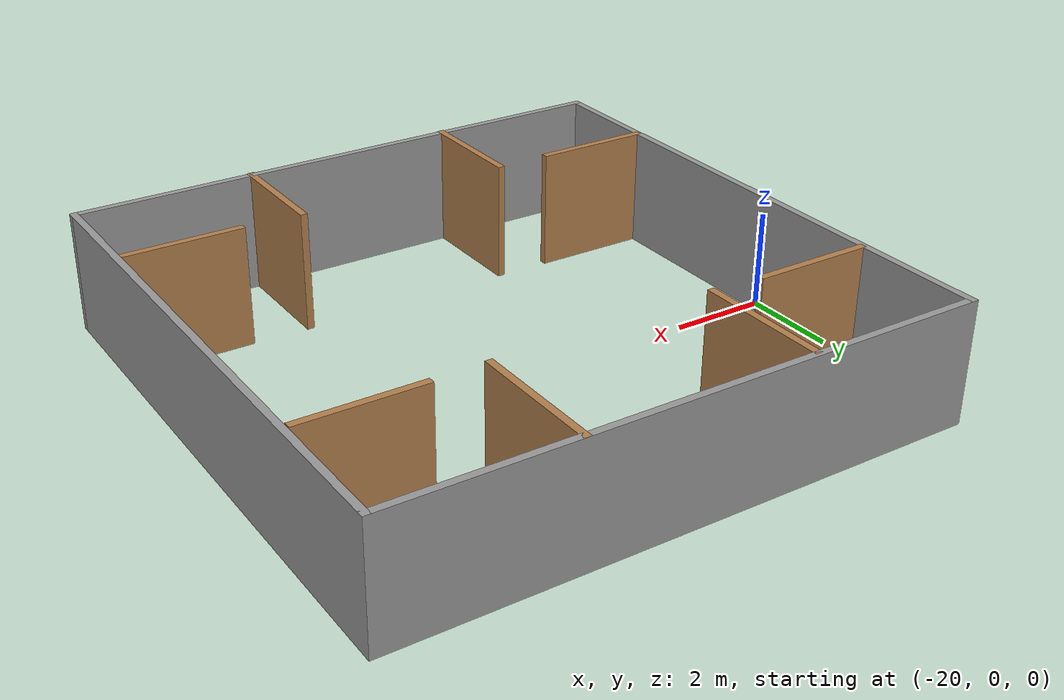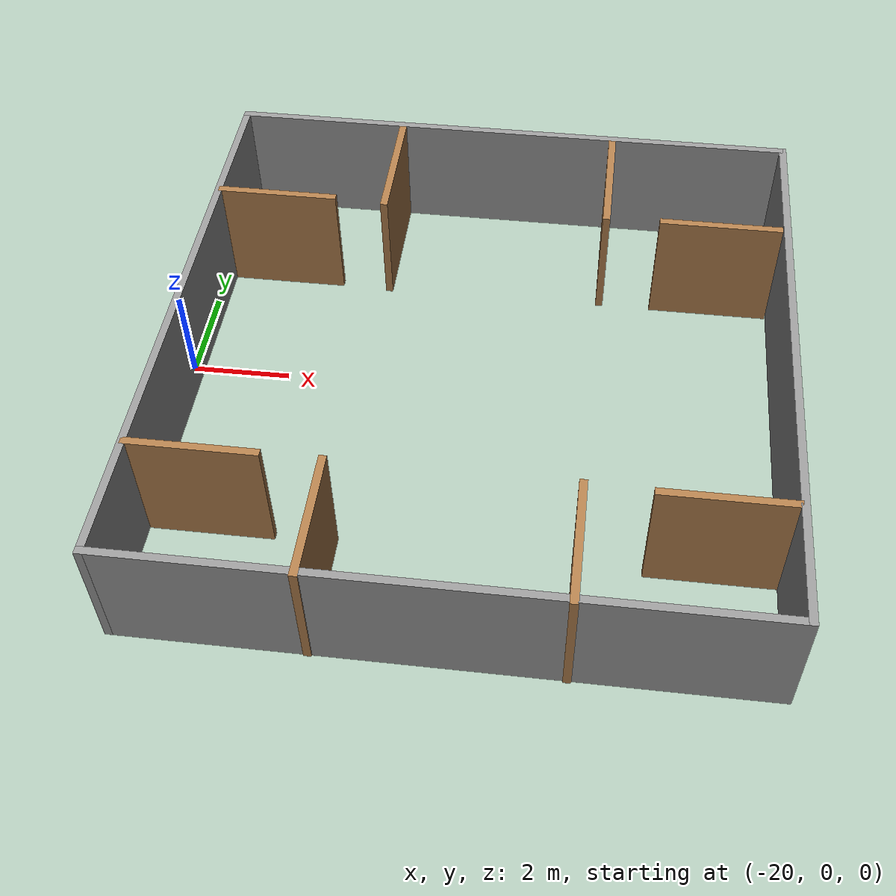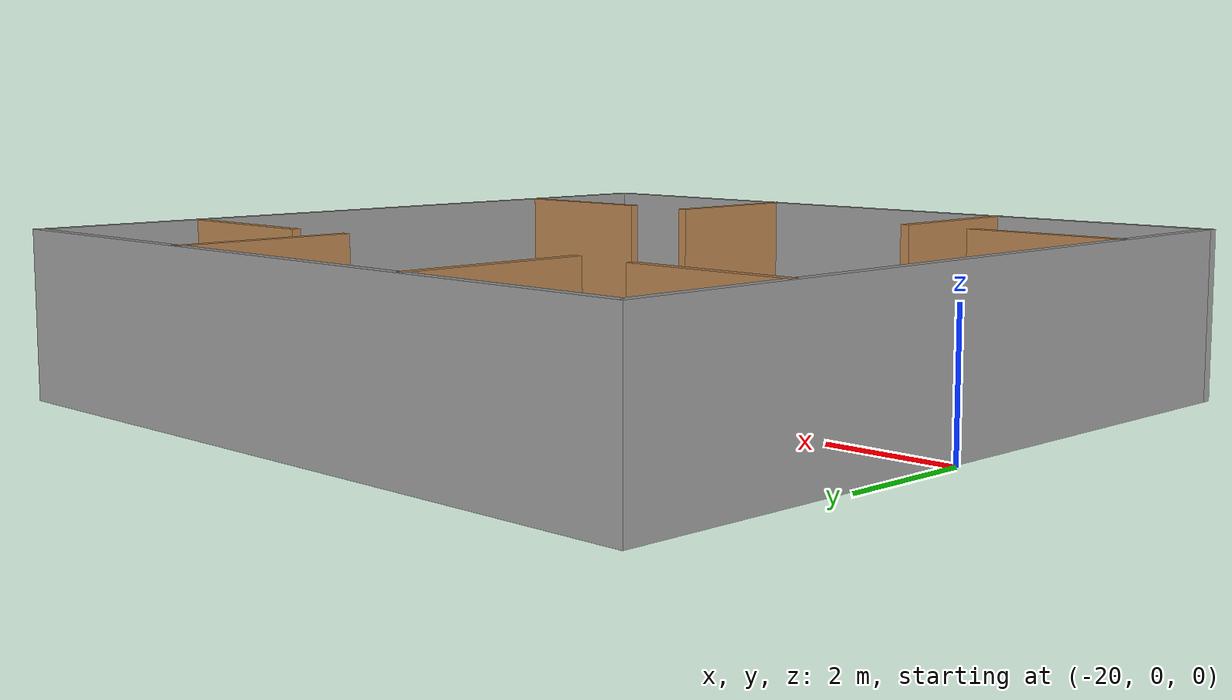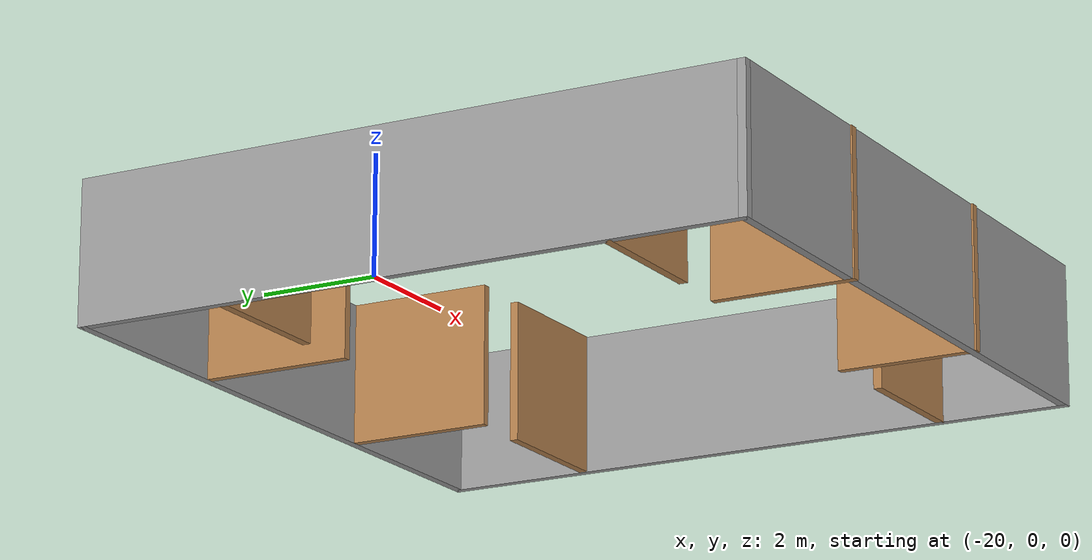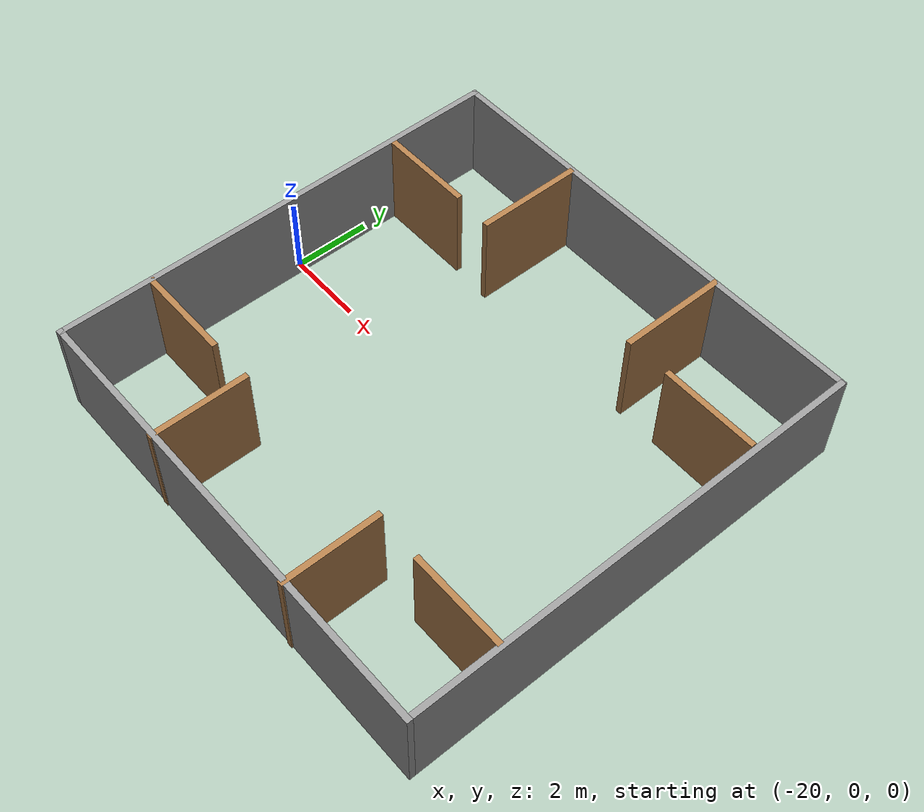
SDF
<?xml version='1.0'?>
<sdf version='1.6'>
  <model name='mybuilding'>
    <pose frame=''>-13.9308 -0.426632 0 0 -0 0</pose>
    <link name='Wall_0'>
      <collision name='Wall_0_Collision'>
        <geometry>
          <box>
            <size>12 0.15 2.5</size>
          </box>
        </geometry>
        <pose frame=''>0 0 1.25 0 -0 0</pose>
      </collision>
      <visual name='Wall_0_Visual'>
        <pose frame=''>0 0 1.25 0 -0 0</pose>
        <geometry>
          <box>
            <size>12 0.15 2.5</size>
          </box>
        </geometry>
        <material>
          <script>
            <uri>file://media/materials/scripts/gazebo.material</uri>
            <name>Gazebo/Grey</name>
          </script>
          <ambient>0.262745 0.262745 0.262745 1</ambient>
        </material>
        <meta>
          <layer>0</layer>
        </meta>
      </visual>
      <pose frame=''>1e-06 5.94223 0 0 -0 0</pose>
    </link>
    <link name='Wall_11'>
      <collision name='Wall_11_Collision'>
        <geometry>
          <box>
            <size>2.5 0.15 2.5</size>
          </box>
        </geometry>
        <pose frame=''>0 0 1.25 0 -0 0</pose>
      </collision>
      <visual name='Wall_11_Visual'>
        <pose frame=''>0 0 1.25 0 -0 0</pose>
        <geometry>
          <box>
            <size>2.5 0.15 2.5</size>
          </box>
        </geometry>
        <material>
          <script>
            <uri>file://media/materials/scripts/gazebo.material</uri>
            <name>Gazebo/Wood</name>
          </script>
          <ambient>1 1 1 1</ambient>
        </material>
        <meta>
          <layer>0</layer>
        </meta>
      </visual>
      <pose frame=''>-4.67255 3.32291 0 0 -0 0</pose>
    </link>
    <link name='Wall_13'>
      <collision name='Wall_13_Collision'>
        <geometry>
          <box>
            <size>2.75 0.15 2.5</size>
          </box>
        </geometry>
        <pose frame=''>0 0 1.25 0 -0 0</pose>
      </collision>
      <visual name='Wall_13_Visual'>
        <pose frame=''>0 0 1.25 0 -0 0</pose>
        <geometry>
          <box>
            <size>2.75 0.15 2.5</size>
          </box>
        </geometry>
        <material>
          <script>
            <uri>file://media/materials/scripts/gazebo.material</uri>
            <name>Gazebo/Wood</name>
          </script>
          <ambient>1 1 1 1</ambient>
        </material>
        <meta>
          <layer>0</layer>
        </meta>
      </visual>
      <pose frame=''>-2.38952 4.56971 0 0 -0 1.5708</pose>
    </link>
    <link name='Wall_15'>
      <collision name='Wall_15_Collision'>
        <geometry>
          <box>
            <size>2.75 0.15 2.5</size>
          </box>
        </geometry>
        <pose frame=''>0 0 1.25 0 -0 0</pose>
      </collision>
      <visual name='Wall_15_Visual'>
        <pose frame=''>0 0 1.25 0 -0 0</pose>
        <geometry>
          <box>
            <size>2.75 0.15 2.5</size>
          </box>
        </geometry>
        <material>
          <script>
            <uri>file://media/materials/scripts/gazebo.material</uri>
            <name>Gazebo/Wood</name>
          </script>
          <ambient>1 1 1 1</ambient>
        </material>
        <meta>
          <layer>0</layer>
        </meta>
      </visual>
      <pose frame=''>2.24053 4.63322 0 0 0 -1.5708</pose>
    </link>
    <link name='Wall_17'>
      <collision name='Wall_17_Collision'>
        <geometry>
          <box>
            <size>2.5 0.15 2.5</size>
          </box>
        </geometry>
        <pose frame=''>0 0 1.25 0 -0 0</pose>
      </collision>
      <visual name='Wall_17_Visual'>
        <pose frame=''>0 0 1.25 0 -0 0</pose>
        <geometry>
          <box>
            <size>2.5 0.15 2.5</size>
          </box>
        </geometry>
        <material>
          <script>
            <uri>file://media/materials/scripts/gazebo.material</uri>
            <name>Gazebo/Wood</name>
          </script>
          <ambient>1 1 1 1</ambient>
        </material>
        <meta>
          <layer>0</layer>
        </meta>
      </visual>
      <pose frame=''>4.58323 3.33305 0 0 -0 0</pose>
    </link>
    <link name='Wall_20'>
      <collision name='Wall_20_Collision'>
        <geometry>
          <box>
            <size>2.5 0.15 2.5</size>
          </box>
        </geometry>
        <pose frame=''>0 0 1.25 0 -0 0</pose>
      </collision>
      <visual name='Wall_20_Visual'>
        <pose frame=''>0 0 1.25 0 -0 0</pose>
        <geometry>
          <box>
            <size>2.5 0.15 2.5</size>
          </box>
        </geometry>
        <material>
          <script>
            <uri>file://media/materials/scripts/gazebo.material</uri>
            <name>Gazebo/Wood</name>
          </script>
          <ambient>1 1 1 1</ambient>
        </material>
        <meta>
          <layer>0</layer>
        </meta>
      </visual>
      <pose frame=''>-2.34801 -4.76079 0 0 -0 1.5708</pose>
    </link>
    <link name='Wall_24'>
      <collision name='Wall_24_Collision'>
        <geometry>
          <box>
            <size>2.5 0.15 2.5</size>
          </box>
        </geometry>
        <pose frame=''>0 0 1.25 0 -0 0</pose>
      </collision>
      <visual name='Wall_24_Visual'>
        <pose frame=''>0 0 1.25 0 -0 0</pose>
        <geometry>
          <box>
            <size>2.5 0.15 2.5</size>
          </box>
        </geometry>
        <material>
          <script>
            <uri>file://media/materials/scripts/gazebo.material</uri>
            <name>Gazebo/Wood</name>
          </script>
          <ambient>1 1 1 1</ambient>
        </material>
        <meta>
          <layer>0</layer>
        </meta>
      </visual>
      <pose frame=''>-4.70069 -3.57481 0 0 -0 0</pose>
    </link>
    <link name='Wall_27'>
      <collision name='Wall_27_Collision'>
        <geometry>
          <box>
            <size>2.5 0.15 2.5</size>
          </box>
        </geometry>
        <pose frame=''>0 0 1.25 0 -0 0</pose>
      </collision>
      <visual name='Wall_27_Visual'>
        <pose frame=''>0 0 1.25 0 -0 0</pose>
        <geometry>
          <box>
            <size>2.5 0.15 2.5</size>
          </box>
        </geometry>
        <material>
          <script>
            <uri>file://media/materials/scripts/gazebo.material</uri>
            <name>Gazebo/Wood</name>
          </script>
          <ambient>1 1 1 1</ambient>
        </material>
        <meta>
          <layer>0</layer>
        </meta>
      </visual>
      <pose frame=''>2.18417 -4.76723 0 0 -0 1.5708</pose>
    </link>
    <link name='Wall_29'>
      <collision name='Wall_29_Collision'>
        <geometry>
          <box>
            <size>2.5 0.15 2.5</size>
          </box>
        </geometry>
        <pose frame=''>0 0 1.25 0 -0 0</pose>
      </collision>
      <visual name='Wall_29_Visual'>
        <pose frame=''>0 0 1.25 0 -0 0</pose>
        <geometry>
          <box>
            <size>2.5 0.15 2.5</size>
          </box>
        </geometry>
        <material>
          <script>
            <uri>file://media/materials/scripts/gazebo.material</uri>
            <name>Gazebo/Wood</name>
          </script>
          <ambient>1 1 1 1</ambient>
        </material>
        <meta>
          <layer>0</layer>
        </meta>
      </visual>
      <pose frame=''>4.64658 -3.62801 0 0 -0 0</pose>
    </link>
    <link name='Wall_5'>
      <collision name='Wall_5_Collision'>
        <geometry>
          <box>
            <size>12 0.15 2.5</size>
          </box>
        </geometry>
        <pose frame=''>0 0 1.25 0 -0 0</pose>
      </collision>
      <visual name='Wall_5_Visual'>
        <pose frame=''>0 0 1.25 0 -0 0</pose>
        <geometry>
          <box>
            <size>12 0.15 2.5</size>
          </box>
        </geometry>
        <material>
          <script>
            <uri>file://media/materials/scripts/gazebo.material</uri>
            <name>Gazebo/Grey</name>
          </script>
          <ambient>0.262745 0.262745 0.262745 1</ambient>
        </material>
        <meta>
          <layer>0</layer>
        </meta>
      </visual>
      <pose frame=''>5.925 0.017226 0 0 0 -1.5708</pose>
    </link>
    <link name='Wall_6'>
      <collision name='Wall_6_Collision'>
        <geometry>
          <box>
            <size>12 0.15 2.5</size>
          </box>
        </geometry>
        <pose frame=''>0 0 1.25 0 -0 0</pose>
      </collision>
      <visual name='Wall_6_Visual'>
        <pose frame=''>0 0 1.25 0 -0 0</pose>
        <geometry>
          <box>
            <size>12 0.15 2.5</size>
          </box>
        </geometry>
        <material>
          <script>
            <uri>file://media/materials/scripts/gazebo.material</uri>
            <name>Gazebo/Grey</name>
          </script>
          <ambient>0.262745 0.262745 0.262745 1</ambient>
        </material>
        <meta>
          <layer>0</layer>
        </meta>
      </visual>
      <pose frame=''>1e-06 -5.90777 0 0 -0 3.14159</pose>
    </link>
    <link name='Wall_7'>
      <collision name='Wall_7_Collision'>
        <geometry>
          <box>
            <size>12 0.15 2.5</size>
          </box>
        </geometry>
        <pose frame=''>0 0 1.25 0 -0 0</pose>
      </collision>
      <visual name='Wall_7_Visual'>
        <pose frame=''>0 0 1.25 0 -0 0</pose>
        <geometry>
          <box>
            <size>12 0.15 2.5</size>
          </box>
        </geometry>
        <material>
          <script>
            <uri>file://media/materials/scripts/gazebo.material</uri>
            <name>Gazebo/Grey</name>
          </script>
          <ambient>0.262745 0.262745 0.262745 1</ambient>
        </material>
        <meta>
          <layer>0</layer>
        </meta>
      </visual>
      <pose frame=''>-5.925 0.017226 0 0 -0 1.5708</pose>
    </link>
    <static>1</static>
  </model>
</sdf>
